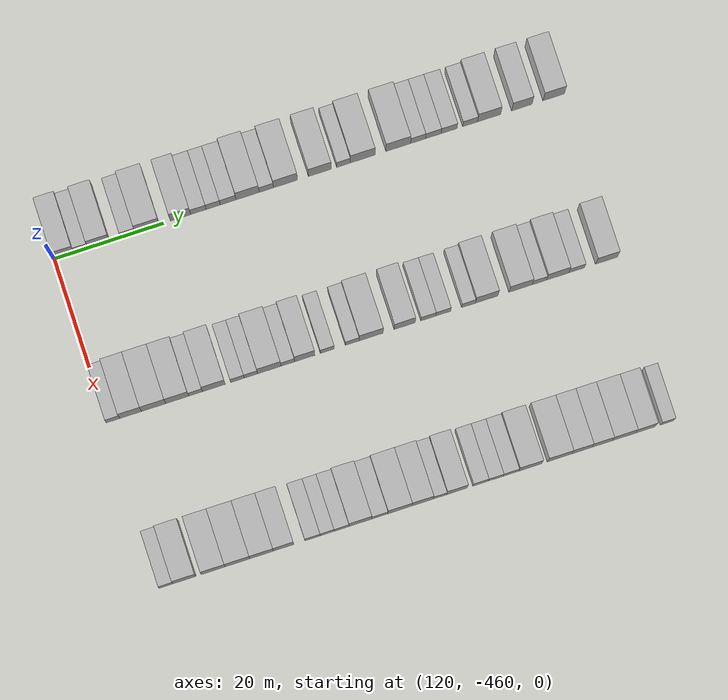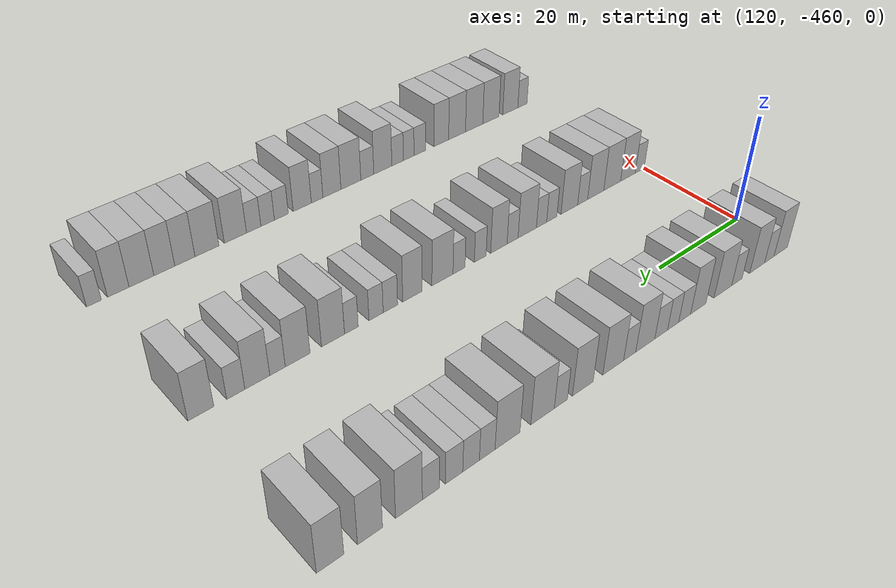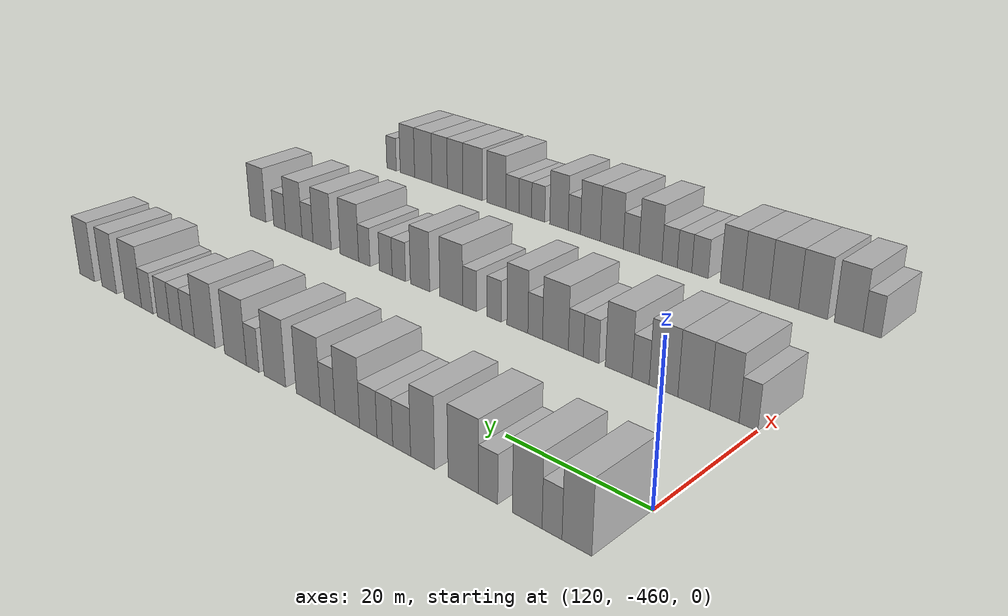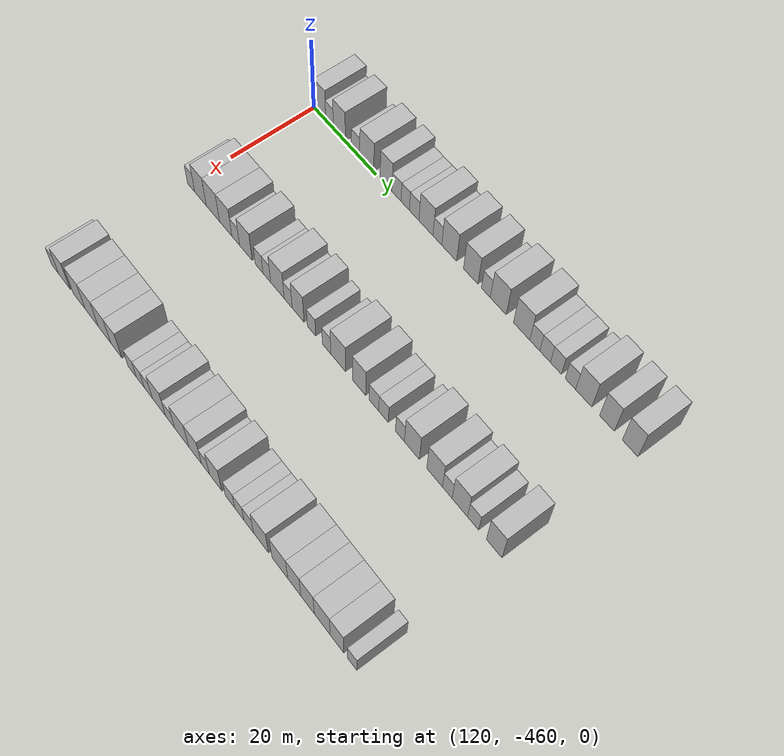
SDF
<sdf version="1.6">
 <world name="default">
  <model name="building_702">
   <static>1</static>
   <pose>115.0000 -458.1522 0 0.000000 0.000000 0.000000</pose>
   <link name="link">
    <pose>0 0 4.50 0 0 0</pose>
    <collision name="collision"><geometry><box><size>10.0000 3.6956 9.0000</size></box></geometry></collision>
    <visual name="visual">
     <cast_shadows>0</cast_shadows>
     <geometry><box><size>10.0000 3.6956 9.0000</size></box></geometry>
     <material>
      <script>
       <uri>model://HANNAS_wall/materials/scripts</uri>
       <uri>model://HANNAS_wall/materials/textures</uri>
       <name>vrc/HANNAS_wall</name>
      </script>
     </material>
    </visual>
   </link>
  </model>
  <model name="building_703">
   <static>1</static>
   <pose>115.0000 -455.0283 0 0.000000 0.000000 0.000000</pose>
   <link name="link">
    <pose>0 0 3.00 0 0 0</pose>
    <collision name="collision"><geometry><box><size>10.0000 2.5522 6.0000</size></box></geometry></collision>
    <visual name="visual">
     <cast_shadows>0</cast_shadows>
     <geometry><box><size>10.0000 2.5522 6.0000</size></box></geometry>
     <material>
      <script>
       <uri>model://HANNAS_wall/materials/scripts</uri>
       <uri>model://HANNAS_wall/materials/textures</uri>
       <name>vrc/HANNAS_wall</name>
      </script>
     </material>
    </visual>
   </link>
  </model>
  <model name="building_704">
   <static>1</static>
   <pose>115.0000 -451.7922 0 0.000000 0.000000 0.000000</pose>
   <link name="link">
    <pose>0 0 4.50 0 0 0</pose>
    <collision name="collision"><geometry><box><size>10.0000 3.9200 9.0000</size></box></geometry></collision>
    <visual name="visual">
     <cast_shadows>0</cast_shadows>
     <geometry><box><size>10.0000 3.9200 9.0000</size></box></geometry>
     <material>
      <script>
       <uri>model://HANNAS_wall/materials/scripts</uri>
       <uri>model://HANNAS_wall/materials/textures</uri>
       <name>vrc/HANNAS_wall</name>
      </script>
     </material>
    </visual>
   </link>
  </model>
  <model name="building_705">
   <static>1</static>
   <pose>115.0000 -446.5044 0 0.000000 0.000000 0.000000</pose>
   <link name="link">
    <pose>0 0 3.00 0 0 0</pose>
    <collision name="collision"><geometry><box><size>10.0000 2.6556 6.0000</size></box></geometry></collision>
    <visual name="visual">
     <cast_shadows>0</cast_shadows>
     <geometry><box><size>10.0000 2.6556 6.0000</size></box></geometry>
     <material>
      <script>
       <uri>model://HANNAS_wall/materials/scripts</uri>
       <uri>model://HANNAS_wall/materials/textures</uri>
       <name>vrc/HANNAS_wall</name>
      </script>
     </material>
    </visual>
   </link>
  </model>
  <model name="building_706">
   <static>1</static>
   <pose>115.0000 -442.9688 0 0.000000 0.000000 0.000000</pose>
   <link name="link">
    <pose>0 0 4.50 0 0 0</pose>
    <collision name="collision"><geometry><box><size>10.0000 4.4158 9.0000</size></box></geometry></collision>
    <visual name="visual">
     <cast_shadows>0</cast_shadows>
     <geometry><box><size>10.0000 4.4158 9.0000</size></box></geometry>
     <material>
      <script>
       <uri>model://HANNAS_wall/materials/scripts</uri>
       <uri>model://HANNAS_wall/materials/textures</uri>
       <name>vrc/HANNAS_wall</name>
      </script>
     </material>
    </visual>
   </link>
  </model>
  <model name="building_707">
   <static>1</static>
   <pose>115.0000 -436.9194 0 0.000000 0.000000 0.000000</pose>
   <link name="link">
    <pose>0 0 4.50 0 0 0</pose>
    <collision name="collision"><geometry><box><size>10.0000 3.6829 9.0000</size></box></geometry></collision>
    <visual name="visual">
     <cast_shadows>0</cast_shadows>
     <geometry><box><size>10.0000 3.6829 9.0000</size></box></geometry>
     <material>
      <script>
       <uri>model://HANNAS_wall/materials/scripts</uri>
       <uri>model://HANNAS_wall/materials/textures</uri>
       <name>vrc/HANNAS_wall</name>
      </script>
     </material>
    </visual>
   </link>
  </model>
  <model name="building_708">
   <static>1</static>
   <pose>115.0000 -433.6701 0 0.000000 0.000000 0.000000</pose>
   <link name="link">
    <pose>0 0 3.00 0 0 0</pose>
    <collision name="collision"><geometry><box><size>10.0000 2.8158 6.0000</size></box></geometry></collision>
    <visual name="visual">
     <cast_shadows>0</cast_shadows>
     <geometry><box><size>10.0000 2.8158 6.0000</size></box></geometry>
     <material>
      <script>
       <uri>model://HANNAS_wall/materials/scripts</uri>
       <uri>model://HANNAS_wall/materials/textures</uri>
       <name>vrc/HANNAS_wall</name>
      </script>
     </material>
    </visual>
   </link>
  </model>
  <model name="building_709">
   <static>1</static>
   <pose>115.0000 -430.9777 0 0.000000 0.000000 0.000000</pose>
   <link name="link">
    <pose>0 0 3.00 0 0 0</pose>
    <collision name="collision"><geometry><box><size>10.0000 2.5691 6.0000</size></box></geometry></collision>
    <visual name="visual">
     <cast_shadows>0</cast_shadows>
     <geometry><box><size>10.0000 2.5691 6.0000</size></box></geometry>
     <material>
      <script>
       <uri>model://HANNAS_wall/materials/scripts</uri>
       <uri>model://HANNAS_wall/materials/textures</uri>
       <name>vrc/HANNAS_wall</name>
      </script>
     </material>
    </visual>
   </link>
  </model>
  <model name="building_710">
   <static>1</static>
   <pose>115.0000 -428.2494 0 0.000000 0.000000 0.000000</pose>
   <link name="link">
    <pose>0 0 3.00 0 0 0</pose>
    <collision name="collision"><geometry><box><size>10.0000 2.8874 6.0000</size></box></geometry></collision>
    <visual name="visual">
     <cast_shadows>0</cast_shadows>
     <geometry><box><size>10.0000 2.8874 6.0000</size></box></geometry>
     <material>
      <script>
       <uri>model://HANNAS_wall/materials/scripts</uri>
       <uri>model://HANNAS_wall/materials/textures</uri>
       <name>vrc/HANNAS_wall</name>
      </script>
     </material>
    </visual>
   </link>
  </model>
  <model name="building_711">
   <static>1</static>
   <pose>115.0000 -424.6953 0 0.000000 0.000000 0.000000</pose>
   <link name="link">
    <pose>0 0 4.50 0 0 0</pose>
    <collision name="collision"><geometry><box><size>10.0000 4.2209 9.0000</size></box></geometry></collision>
    <visual name="visual">
     <cast_shadows>0</cast_shadows>
     <geometry><box><size>10.0000 4.2209 9.0000</size></box></geometry>
     <material>
      <script>
       <uri>model://HANNAS_wall/materials/scripts</uri>
       <uri>model://HANNAS_wall/materials/textures</uri>
       <name>vrc/HANNAS_wall</name>
      </script>
     </material>
    </visual>
   </link>
  </model>
  <model name="building_712">
   <static>1</static>
   <pose>115.0000 -421.2819 0 0.000000 0.000000 0.000000</pose>
   <link name="link">
    <pose>0 0 3.00 0 0 0</pose>
    <collision name="collision"><geometry><box><size>10.0000 2.6059 6.0000</size></box></geometry></collision>
    <visual name="visual">
     <cast_shadows>0</cast_shadows>
     <geometry><box><size>10.0000 2.6059 6.0000</size></box></geometry>
     <material>
      <script>
       <uri>model://HANNAS_wall/materials/scripts</uri>
       <uri>model://HANNAS_wall/materials/textures</uri>
       <name>vrc/HANNAS_wall</name>
      </script>
     </material>
    </visual>
   </link>
  </model>
  <model name="building_713">
   <static>1</static>
   <pose>115.0000 -417.7911 0 0.000000 0.000000 0.000000</pose>
   <link name="link">
    <pose>0 0 4.50 0 0 0</pose>
    <collision name="collision"><geometry><box><size>10.0000 4.3756 9.0000</size></box></geometry></collision>
    <visual name="visual">
     <cast_shadows>0</cast_shadows>
     <geometry><box><size>10.0000 4.3756 9.0000</size></box></geometry>
     <material>
      <script>
       <uri>model://HANNAS_wall/materials/scripts</uri>
       <uri>model://HANNAS_wall/materials/textures</uri>
       <name>vrc/HANNAS_wall</name>
      </script>
     </material>
    </visual>
   </link>
  </model>
  <model name="building_714">
   <static>1</static>
   <pose>115.0000 -411.5226 0 0.000000 0.000000 0.000000</pose>
   <link name="link">
    <pose>0 0 4.50 0 0 0</pose>
    <collision name="collision"><geometry><box><size>10.0000 4.1614 9.0000</size></box></geometry></collision>
    <visual name="visual">
     <cast_shadows>0</cast_shadows>
     <geometry><box><size>10.0000 4.1614 9.0000</size></box></geometry>
     <material>
      <script>
       <uri>model://HANNAS_wall/materials/scripts</uri>
       <uri>model://HANNAS_wall/materials/textures</uri>
       <name>vrc/HANNAS_wall</name>
      </script>
     </material>
    </visual>
   </link>
  </model>
  <model name="building_715">
   <static>1</static>
   <pose>115.0000 -407.1749 0 0.000000 0.000000 0.000000</pose>
   <link name="link">
    <pose>0 0 3.00 0 0 0</pose>
    <collision name="collision"><geometry><box><size>10.0000 2.5339 6.0000</size></box></geometry></collision>
    <visual name="visual">
     <cast_shadows>0</cast_shadows>
     <geometry><box><size>10.0000 2.5339 6.0000</size></box></geometry>
     <material>
      <script>
       <uri>model://HANNAS_wall/materials/scripts</uri>
       <uri>model://HANNAS_wall/materials/textures</uri>
       <name>vrc/HANNAS_wall</name>
      </script>
     </material>
    </visual>
   </link>
  </model>
  <model name="building_716">
   <static>1</static>
   <pose>115.0000 -403.6749 0 0.000000 0.000000 0.000000</pose>
   <link name="link">
    <pose>0 0 4.50 0 0 0</pose>
    <collision name="collision"><geometry><box><size>10.0000 4.4660 9.0000</size></box></geometry></collision>
    <visual name="visual">
     <cast_shadows>0</cast_shadows>
     <geometry><box><size>10.0000 4.4660 9.0000</size></box></geometry>
     <material>
      <script>
       <uri>model://HANNAS_wall/materials/scripts</uri>
       <uri>model://HANNAS_wall/materials/textures</uri>
       <name>vrc/HANNAS_wall</name>
      </script>
     </material>
    </visual>
   </link>
  </model>
  <model name="building_717">
   <static>1</static>
   <pose>115.0000 -397.1925 0 0.000000 0.000000 0.000000</pose>
   <link name="link">
    <pose>0 0 4.50 0 0 0</pose>
    <collision name="collision"><geometry><box><size>10.0000 4.4988 9.0000</size></box></geometry></collision>
    <visual name="visual">
     <cast_shadows>0</cast_shadows>
     <geometry><box><size>10.0000 4.4988 9.0000</size></box></geometry>
     <material>
      <script>
       <uri>model://HANNAS_wall/materials/scripts</uri>
       <uri>model://HANNAS_wall/materials/textures</uri>
       <name>vrc/HANNAS_wall</name>
      </script>
     </material>
    </visual>
   </link>
  </model>
  <model name="building_718">
   <static>1</static>
   <pose>115.0000 -393.5717 0 0.000000 0.000000 0.000000</pose>
   <link name="link">
    <pose>0 0 3.00 0 0 0</pose>
    <collision name="collision"><geometry><box><size>10.0000 2.7427 6.0000</size></box></geometry></collision>
    <visual name="visual">
     <cast_shadows>0</cast_shadows>
     <geometry><box><size>10.0000 2.7427 6.0000</size></box></geometry>
     <material>
      <script>
       <uri>model://HANNAS_wall/materials/scripts</uri>
       <uri>model://HANNAS_wall/materials/textures</uri>
       <name>vrc/HANNAS_wall</name>
      </script>
     </material>
    </visual>
   </link>
  </model>
  <model name="building_719">
   <static>1</static>
   <pose>115.0000 -390.7746 0 0.000000 0.000000 0.000000</pose>
   <link name="link">
    <pose>0 0 3.00 0 0 0</pose>
    <collision name="collision"><geometry><box><size>10.0000 2.8515 6.0000</size></box></geometry></collision>
    <visual name="visual">
     <cast_shadows>0</cast_shadows>
     <geometry><box><size>10.0000 2.8515 6.0000</size></box></geometry>
     <material>
      <script>
       <uri>model://HANNAS_wall/materials/scripts</uri>
       <uri>model://HANNAS_wall/materials/textures</uri>
       <name>vrc/HANNAS_wall</name>
      </script>
     </material>
    </visual>
   </link>
  </model>
  <model name="building_720">
   <static>1</static>
   <pose>115.0000 -387.8853 0 0.000000 0.000000 0.000000</pose>
   <link name="link">
    <pose>0 0 3.00 0 0 0</pose>
    <collision name="collision"><geometry><box><size>10.0000 2.9270 6.0000</size></box></geometry></collision>
    <visual name="visual">
     <cast_shadows>0</cast_shadows>
     <geometry><box><size>10.0000 2.9270 6.0000</size></box></geometry>
     <material>
      <script>
       <uri>model://HANNAS_wall/materials/scripts</uri>
       <uri>model://HANNAS_wall/materials/textures</uri>
       <name>vrc/HANNAS_wall</name>
      </script>
     </material>
    </visual>
   </link>
  </model>
  <model name="building_721">
   <static>1</static>
   <pose>115.0000 -384.0504 0 0.000000 0.000000 0.000000</pose>
   <link name="link">
    <pose>0 0 3.00 0 0 0</pose>
    <collision name="collision"><geometry><box><size>10.0000 2.7428 6.0000</size></box></geometry></collision>
    <visual name="visual">
     <cast_shadows>0</cast_shadows>
     <geometry><box><size>10.0000 2.7428 6.0000</size></box></geometry>
     <material>
      <script>
       <uri>model://HANNAS_wall/materials/scripts</uri>
       <uri>model://HANNAS_wall/materials/textures</uri>
       <name>vrc/HANNAS_wall</name>
      </script>
     </material>
    </visual>
   </link>
  </model>
  <model name="building_722">
   <static>1</static>
   <pose>115.0000 -380.5651 0 0.000000 0.000000 0.000000</pose>
   <link name="link">
    <pose>0 0 4.50 0 0 0</pose>
    <collision name="collision"><geometry><box><size>10.0000 4.2280 9.0000</size></box></geometry></collision>
    <visual name="visual">
     <cast_shadows>0</cast_shadows>
     <geometry><box><size>10.0000 4.2280 9.0000</size></box></geometry>
     <material>
      <script>
       <uri>model://HANNAS_wall/materials/scripts</uri>
       <uri>model://HANNAS_wall/materials/textures</uri>
       <name>vrc/HANNAS_wall</name>
      </script>
     </material>
    </visual>
   </link>
  </model>
  <model name="building_723">
   <static>1</static>
   <pose>115.0000 -374.5750 0 0.000000 0.000000 0.000000</pose>
   <link name="link">
    <pose>0 0 4.50 0 0 0</pose>
    <collision name="collision"><geometry><box><size>10.0000 3.7521 9.0000</size></box></geometry></collision>
    <visual name="visual">
     <cast_shadows>0</cast_shadows>
     <geometry><box><size>10.0000 3.7521 9.0000</size></box></geometry>
     <material>
      <script>
       <uri>model://HANNAS_wall/materials/scripts</uri>
       <uri>model://HANNAS_wall/materials/textures</uri>
       <name>vrc/HANNAS_wall</name>
      </script>
     </material>
    </visual>
   </link>
  </model>
  <model name="building_724">
   <static>1</static>
   <pose>115.0000 -368.7355 0 0.000000 0.000000 0.000000</pose>
   <link name="link">
    <pose>0 0 4.50 0 0 0</pose>
    <collision name="collision"><geometry><box><size>10.0000 3.9268 9.0000</size></box></geometry></collision>
    <visual name="visual">
     <cast_shadows>0</cast_shadows>
     <geometry><box><size>10.0000 3.9268 9.0000</size></box></geometry>
     <material>
      <script>
       <uri>model://HANNAS_wall/materials/scripts</uri>
       <uri>model://HANNAS_wall/materials/textures</uri>
       <name>vrc/HANNAS_wall</name>
      </script>
     </material>
    </visual>
   </link>
  </model>
  <model name="building_932">
   <static>1</static>
   <pose>145.0000 -458.7720 0 0.000000 0.000000 0.000000</pose>
   <link name="link">
    <pose>0 0 3.00 0 0 0</pose>
    <collision name="collision"><geometry><box><size>10.0000 2.4559 6.0000</size></box></geometry></collision>
    <visual name="visual">
     <cast_shadows>0</cast_shadows>
     <geometry><box><size>10.0000 2.4559 6.0000</size></box></geometry>
     <material>
      <script>
       <uri>model://HANNAS_wall/materials/scripts</uri>
       <uri>model://HANNAS_wall/materials/textures</uri>
       <name>vrc/HANNAS_wall</name>
      </script>
     </material>
    </visual>
   </link>
  </model>
  <model name="building_933">
   <static>1</static>
   <pose>145.0000 -455.5811 0 0.000000 0.000000 0.000000</pose>
   <link name="link">
    <pose>0 0 4.50 0 0 0</pose>
    <collision name="collision"><geometry><box><size>10.0000 3.9260 9.0000</size></box></geometry></collision>
    <visual name="visual">
     <cast_shadows>0</cast_shadows>
     <geometry><box><size>10.0000 3.9260 9.0000</size></box></geometry>
     <material>
      <script>
       <uri>model://HANNAS_wall/materials/scripts</uri>
       <uri>model://HANNAS_wall/materials/textures</uri>
       <name>vrc/HANNAS_wall</name>
      </script>
     </material>
    </visual>
   </link>
  </model>
  <model name="building_934">
   <static>1</static>
   <pose>145.0000 -451.4087 0 0.000000 0.000000 0.000000</pose>
   <link name="link">
    <pose>0 0 4.50 0 0 0</pose>
    <collision name="collision"><geometry><box><size>10.0000 4.4187 9.0000</size></box></geometry></collision>
    <visual name="visual">
     <cast_shadows>0</cast_shadows>
     <geometry><box><size>10.0000 4.4187 9.0000</size></box></geometry>
     <material>
      <script>
       <uri>model://HANNAS_wall/materials/scripts</uri>
       <uri>model://HANNAS_wall/materials/textures</uri>
       <name>vrc/HANNAS_wall</name>
      </script>
     </material>
    </visual>
   </link>
  </model>
  <model name="building_935">
   <static>1</static>
   <pose>145.0000 -447.1351 0 0.000000 0.000000 0.000000</pose>
   <link name="link">
    <pose>0 0 4.50 0 0 0</pose>
    <collision name="collision"><geometry><box><size>10.0000 4.1285 9.0000</size></box></geometry></collision>
    <visual name="visual">
     <cast_shadows>0</cast_shadows>
     <geometry><box><size>10.0000 4.1285 9.0000</size></box></geometry>
     <material>
      <script>
       <uri>model://HANNAS_wall/materials/scripts</uri>
       <uri>model://HANNAS_wall/materials/textures</uri>
       <name>vrc/HANNAS_wall</name>
      </script>
     </material>
    </visual>
   </link>
  </model>
  <model name="building_936">
   <static>1</static>
   <pose>145.0000 -443.8119 0 0.000000 0.000000 0.000000</pose>
   <link name="link">
    <pose>0 0 3.00 0 0 0</pose>
    <collision name="collision"><geometry><box><size>10.0000 2.5180 6.0000</size></box></geometry></collision>
    <visual name="visual">
     <cast_shadows>0</cast_shadows>
     <geometry><box><size>10.0000 2.5180 6.0000</size></box></geometry>
     <material>
      <script>
       <uri>model://HANNAS_wall/materials/scripts</uri>
       <uri>model://HANNAS_wall/materials/textures</uri>
       <name>vrc/HANNAS_wall</name>
      </script>
     </material>
    </visual>
   </link>
  </model>
  <model name="building_937">
   <static>1</static>
   <pose>145.0000 -440.5059 0 0.000000 0.000000 0.000000</pose>
   <link name="link">
    <pose>0 0 4.50 0 0 0</pose>
    <collision name="collision"><geometry><box><size>10.0000 4.0940 9.0000</size></box></geometry></collision>
    <visual name="visual">
     <cast_shadows>0</cast_shadows>
     <geometry><box><size>10.0000 4.0940 9.0000</size></box></geometry>
     <material>
      <script>
       <uri>model://HANNAS_wall/materials/scripts</uri>
       <uri>model://HANNAS_wall/materials/textures</uri>
       <name>vrc/HANNAS_wall</name>
      </script>
     </material>
    </visual>
   </link>
  </model>
  <model name="building_938">
   <static>1</static>
   <pose>145.0000 -436.2290 0 0.000000 0.000000 0.000000</pose>
   <link name="link">
    <pose>0 0 3.00 0 0 0</pose>
    <collision name="collision"><geometry><box><size>10.0000 2.4597 6.0000</size></box></geometry></collision>
    <visual name="visual">
     <cast_shadows>0</cast_shadows>
     <geometry><box><size>10.0000 2.4597 6.0000</size></box></geometry>
     <material>
      <script>
       <uri>model://HANNAS_wall/materials/scripts</uri>
       <uri>model://HANNAS_wall/materials/textures</uri>
       <name>vrc/HANNAS_wall</name>
      </script>
     </material>
    </visual>
   </link>
  </model>
  <model name="building_939">
   <static>1</static>
   <pose>145.0000 -433.7889 0 0.000000 0.000000 0.000000</pose>
   <link name="link">
    <pose>0 0 3.00 0 0 0</pose>
    <collision name="collision"><geometry><box><size>10.0000 2.4206 6.0000</size></box></geometry></collision>
    <visual name="visual">
     <cast_shadows>0</cast_shadows>
     <geometry><box><size>10.0000 2.4206 6.0000</size></box></geometry>
     <material>
      <script>
       <uri>model://HANNAS_wall/materials/scripts</uri>
       <uri>model://HANNAS_wall/materials/textures</uri>
       <name>vrc/HANNAS_wall</name>
      </script>
     </material>
    </visual>
   </link>
  </model>
  <model name="building_940">
   <static>1</static>
   <pose>145.0000 -430.4483 0 0.000000 0.000000 0.000000</pose>
   <link name="link">
    <pose>0 0 4.50 0 0 0</pose>
    <collision name="collision"><geometry><box><size>10.0000 4.2606 9.0000</size></box></geometry></collision>
    <visual name="visual">
     <cast_shadows>0</cast_shadows>
     <geometry><box><size>10.0000 4.2606 9.0000</size></box></geometry>
     <material>
      <script>
       <uri>model://HANNAS_wall/materials/scripts</uri>
       <uri>model://HANNAS_wall/materials/textures</uri>
       <name>vrc/HANNAS_wall</name>
      </script>
     </material>
    </visual>
   </link>
  </model>
  <model name="building_941">
   <static>1</static>
   <pose>145.0000 -427.0723 0 0.000000 0.000000 0.000000</pose>
   <link name="link">
    <pose>0 0 3.00 0 0 0</pose>
    <collision name="collision"><geometry><box><size>10.0000 2.4914 6.0000</size></box></geometry></collision>
    <visual name="visual">
     <cast_shadows>0</cast_shadows>
     <geometry><box><size>10.0000 2.4914 6.0000</size></box></geometry>
     <material>
      <script>
       <uri>model://HANNAS_wall/materials/scripts</uri>
       <uri>model://HANNAS_wall/materials/textures</uri>
       <name>vrc/HANNAS_wall</name>
      </script>
     </material>
    </visual>
   </link>
  </model>
  <model name="building_942">
   <static>1</static>
   <pose>145.0000 -423.9969 0 0.000000 0.000000 0.000000</pose>
   <link name="link">
    <pose>0 0 4.50 0 0 0</pose>
    <collision name="collision"><geometry><box><size>10.0000 3.6592 9.0000</size></box></geometry></collision>
    <visual name="visual">
     <cast_shadows>0</cast_shadows>
     <geometry><box><size>10.0000 3.6592 9.0000</size></box></geometry>
     <material>
      <script>
       <uri>model://HANNAS_wall/materials/scripts</uri>
       <uri>model://HANNAS_wall/materials/textures</uri>
       <name>vrc/HANNAS_wall</name>
      </script>
     </material>
    </visual>
   </link>
  </model>
  <model name="building_943">
   <static>1</static>
   <pose>145.0000 -419.8960 0 0.000000 0.000000 0.000000</pose>
   <link name="link">
    <pose>0 0 3.00 0 0 0</pose>
    <collision name="collision"><geometry><box><size>10.0000 2.5427 6.0000</size></box></geometry></collision>
    <visual name="visual">
     <cast_shadows>0</cast_shadows>
     <geometry><box><size>10.0000 2.5427 6.0000</size></box></geometry>
     <material>
      <script>
       <uri>model://HANNAS_wall/materials/scripts</uri>
       <uri>model://HANNAS_wall/materials/textures</uri>
       <name>vrc/HANNAS_wall</name>
      </script>
     </material>
    </visual>
   </link>
  </model>
  <model name="building_944">
   <static>1</static>
   <pose>145.0000 -415.3587 0 0.000000 0.000000 0.000000</pose>
   <link name="link">
    <pose>0 0 3.00 0 0 0</pose>
    <collision name="collision"><geometry><box><size>10.0000 2.5319 6.0000</size></box></geometry></collision>
    <visual name="visual">
     <cast_shadows>0</cast_shadows>
     <geometry><box><size>10.0000 2.5319 6.0000</size></box></geometry>
     <material>
      <script>
       <uri>model://HANNAS_wall/materials/scripts</uri>
       <uri>model://HANNAS_wall/materials/textures</uri>
       <name>vrc/HANNAS_wall</name>
      </script>
     </material>
    </visual>
   </link>
  </model>
  <model name="building_945">
   <static>1</static>
   <pose>145.0000 -411.9163 0 0.000000 0.000000 0.000000</pose>
   <link name="link">
    <pose>0 0 4.50 0 0 0</pose>
    <collision name="collision"><geometry><box><size>10.0000 4.3529 9.0000</size></box></geometry></collision>
    <visual name="visual">
     <cast_shadows>0</cast_shadows>
     <geometry><box><size>10.0000 4.3529 9.0000</size></box></geometry>
     <material>
      <script>
       <uri>model://HANNAS_wall/materials/scripts</uri>
       <uri>model://HANNAS_wall/materials/textures</uri>
       <name>vrc/HANNAS_wall</name>
      </script>
     </material>
    </visual>
   </link>
  </model>
  <model name="building_946">
   <static>1</static>
   <pose>145.0000 -405.8227 0 0.000000 0.000000 0.000000</pose>
   <link name="link">
    <pose>0 0 4.50 0 0 0</pose>
    <collision name="collision"><geometry><box><size>10.0000 3.8343 9.0000</size></box></geometry></collision>
    <visual name="visual">
     <cast_shadows>0</cast_shadows>
     <geometry><box><size>10.0000 3.8343 9.0000</size></box></geometry>
     <material>
      <script>
       <uri>model://HANNAS_wall/materials/scripts</uri>
       <uri>model://HANNAS_wall/materials/textures</uri>
       <name>vrc/HANNAS_wall</name>
      </script>
     </material>
    </visual>
   </link>
  </model>
  <model name="building_947">
   <static>1</static>
   <pose>145.0000 -401.5251 0 0.000000 0.000000 0.000000</pose>
   <link name="link">
    <pose>0 0 3.00 0 0 0</pose>
    <collision name="collision"><geometry><box><size>10.0000 2.7609 6.0000</size></box></geometry></collision>
    <visual name="visual">
     <cast_shadows>0</cast_shadows>
     <geometry><box><size>10.0000 2.7609 6.0000</size></box></geometry>
     <material>
      <script>
       <uri>model://HANNAS_wall/materials/scripts</uri>
       <uri>model://HANNAS_wall/materials/textures</uri>
       <name>vrc/HANNAS_wall</name>
      </script>
     </material>
    </visual>
   </link>
  </model>
  <model name="building_948">
   <static>1</static>
   <pose>145.0000 -398.8004 0 0.000000 0.000000 0.000000</pose>
   <link name="link">
    <pose>0 0 3.00 0 0 0</pose>
    <collision name="collision"><geometry><box><size>10.0000 2.6885 6.0000</size></box></geometry></collision>
    <visual name="visual">
     <cast_shadows>0</cast_shadows>
     <geometry><box><size>10.0000 2.6885 6.0000</size></box></geometry>
     <material>
      <script>
       <uri>model://HANNAS_wall/materials/scripts</uri>
       <uri>model://HANNAS_wall/materials/textures</uri>
       <name>vrc/HANNAS_wall</name>
      </script>
     </material>
    </visual>
   </link>
  </model>
  <model name="building_949">
   <static>1</static>
   <pose>145.0000 -394.2069 0 0.000000 0.000000 0.000000</pose>
   <link name="link">
    <pose>0 0 3.00 0 0 0</pose>
    <collision name="collision"><geometry><box><size>10.0000 2.4986 6.0000</size></box></geometry></collision>
    <visual name="visual">
     <cast_shadows>0</cast_shadows>
     <geometry><box><size>10.0000 2.4986 6.0000</size></box></geometry>
     <material>
      <script>
       <uri>model://HANNAS_wall/materials/scripts</uri>
       <uri>model://HANNAS_wall/materials/textures</uri>
       <name>vrc/HANNAS_wall</name>
      </script>
     </material>
    </visual>
   </link>
  </model>
  <model name="building_950">
   <static>1</static>
   <pose>145.0000 -390.8938 0 0.000000 0.000000 0.000000</pose>
   <link name="link">
    <pose>0 0 4.50 0 0 0</pose>
    <collision name="collision"><geometry><box><size>10.0000 4.1275 9.0000</size></box></geometry></collision>
    <visual name="visual">
     <cast_shadows>0</cast_shadows>
     <geometry><box><size>10.0000 4.1275 9.0000</size></box></geometry>
     <material>
      <script>
       <uri>model://HANNAS_wall/materials/scripts</uri>
       <uri>model://HANNAS_wall/materials/textures</uri>
       <name>vrc/HANNAS_wall</name>
      </script>
     </material>
    </visual>
   </link>
  </model>
  <model name="building_951">
   <static>1</static>
   <pose>145.0000 -384.7081 0 0.000000 0.000000 0.000000</pose>
   <link name="link">
    <pose>0 0 4.50 0 0 0</pose>
    <collision name="collision"><geometry><box><size>10.0000 4.2439 9.0000</size></box></geometry></collision>
    <visual name="visual">
     <cast_shadows>0</cast_shadows>
     <geometry><box><size>10.0000 4.2439 9.0000</size></box></geometry>
     <material>
      <script>
       <uri>model://HANNAS_wall/materials/scripts</uri>
       <uri>model://HANNAS_wall/materials/textures</uri>
       <name>vrc/HANNAS_wall</name>
      </script>
     </material>
    </visual>
   </link>
  </model>
  <model name="building_952">
   <static>1</static>
   <pose>145.0000 -381.2865 0 0.000000 0.000000 0.000000</pose>
   <link name="link">
    <pose>0 0 3.00 0 0 0</pose>
    <collision name="collision"><geometry><box><size>10.0000 2.5993 6.0000</size></box></geometry></collision>
    <visual name="visual">
     <cast_shadows>0</cast_shadows>
     <geometry><box><size>10.0000 2.5993 6.0000</size></box></geometry>
     <material>
      <script>
       <uri>model://HANNAS_wall/materials/scripts</uri>
       <uri>model://HANNAS_wall/materials/textures</uri>
       <name>vrc/HANNAS_wall</name>
      </script>
     </material>
    </visual>
   </link>
  </model>
  <model name="building_953">
   <static>1</static>
   <pose>145.0000 -377.9598 0 0.000000 0.000000 0.000000</pose>
   <link name="link">
    <pose>0 0 4.50 0 0 0</pose>
    <collision name="collision"><geometry><box><size>10.0000 4.0541 9.0000</size></box></geometry></collision>
    <visual name="visual">
     <cast_shadows>0</cast_shadows>
     <geometry><box><size>10.0000 4.0541 9.0000</size></box></geometry>
     <material>
      <script>
       <uri>model://HANNAS_wall/materials/scripts</uri>
       <uri>model://HANNAS_wall/materials/textures</uri>
       <name>vrc/HANNAS_wall</name>
      </script>
     </material>
    </visual>
   </link>
  </model>
  <model name="building_954">
   <static>1</static>
   <pose>145.0000 -374.4850 0 0.000000 0.000000 0.000000</pose>
   <link name="link">
    <pose>0 0 3.00 0 0 0</pose>
    <collision name="collision"><geometry><box><size>10.0000 2.8956 6.0000</size></box></geometry></collision>
    <visual name="visual">
     <cast_shadows>0</cast_shadows>
     <geometry><box><size>10.0000 2.8956 6.0000</size></box></geometry>
     <material>
      <script>
       <uri>model://HANNAS_wall/materials/scripts</uri>
       <uri>model://HANNAS_wall/materials/textures</uri>
       <name>vrc/HANNAS_wall</name>
      </script>
     </material>
    </visual>
   </link>
  </model>
  <model name="building_955">
   <static>1</static>
   <pose>145.0000 -369.0428 0 0.000000 0.000000 0.000000</pose>
   <link name="link">
    <pose>0 0 4.50 0 0 0</pose>
    <collision name="collision"><geometry><box><size>10.0000 3.9886 9.0000</size></box></geometry></collision>
    <visual name="visual">
     <cast_shadows>0</cast_shadows>
     <geometry><box><size>10.0000 3.9886 9.0000</size></box></geometry>
     <material>
      <script>
       <uri>model://HANNAS_wall/materials/scripts</uri>
       <uri>model://HANNAS_wall/materials/textures</uri>
       <name>vrc/HANNAS_wall</name>
      </script>
     </material>
    </visual>
   </link>
  </model>
  <model name="building_1159">
   <static>1</static>
   <pose>175.0000 -458.7418 0 0.000000 0.000000 0.000000</pose>
   <link name="link">
    <pose>0 0 3.00 0 0 0</pose>
    <collision name="collision"><geometry><box><size>10.0000 2.5164 6.0000</size></box></geometry></collision>
    <visual name="visual">
     <cast_shadows>0</cast_shadows>
     <geometry><box><size>10.0000 2.5164 6.0000</size></box></geometry>
     <material>
      <script>
       <uri>model://HANNAS_wall/materials/scripts</uri>
       <uri>model://HANNAS_wall/materials/textures</uri>
       <name>vrc/HANNAS_wall</name>
      </script>
     </material>
    </visual>
   </link>
  </model>
  <model name="building_1160">
   <static>1</static>
   <pose>175.0000 -455.4317 0 0.000000 0.000000 0.000000</pose>
   <link name="link">
    <pose>0 0 4.50 0 0 0</pose>
    <collision name="collision"><geometry><box><size>10.0000 4.1039 9.0000</size></box></geometry></collision>
    <visual name="visual">
     <cast_shadows>0</cast_shadows>
     <geometry><box><size>10.0000 4.1039 9.0000</size></box></geometry>
     <material>
      <script>
       <uri>model://HANNAS_wall/materials/scripts</uri>
       <uri>model://HANNAS_wall/materials/textures</uri>
       <name>vrc/HANNAS_wall</name>
      </script>
     </material>
    </visual>
   </link>
  </model>
  <model name="building_1161">
   <static>1</static>
   <pose>175.0000 -450.2366 0 0.000000 0.000000 0.000000</pose>
   <link name="link">
    <pose>0 0 4.50 0 0 0</pose>
    <collision name="collision"><geometry><box><size>10.0000 4.2863 9.0000</size></box></geometry></collision>
    <visual name="visual">
     <cast_shadows>0</cast_shadows>
     <geometry><box><size>10.0000 4.2863 9.0000</size></box></geometry>
     <material>
      <script>
       <uri>model://HANNAS_wall/materials/scripts</uri>
       <uri>model://HANNAS_wall/materials/textures</uri>
       <name>vrc/HANNAS_wall</name>
      </script>
     </material>
    </visual>
   </link>
  </model>
  <model name="building_1162">
   <static>1</static>
   <pose>175.0000 -445.8581 0 0.000000 0.000000 0.000000</pose>
   <link name="link">
    <pose>0 0 4.50 0 0 0</pose>
    <collision name="collision"><geometry><box><size>10.0000 4.4708 9.0000</size></box></geometry></collision>
    <visual name="visual">
     <cast_shadows>0</cast_shadows>
     <geometry><box><size>10.0000 4.4708 9.0000</size></box></geometry>
     <material>
      <script>
       <uri>model://HANNAS_wall/materials/scripts</uri>
       <uri>model://HANNAS_wall/materials/textures</uri>
       <name>vrc/HANNAS_wall</name>
      </script>
     </material>
    </visual>
   </link>
  </model>
  <model name="building_1163">
   <static>1</static>
   <pose>175.0000 -441.5015 0 0.000000 0.000000 0.000000</pose>
   <link name="link">
    <pose>0 0 4.50 0 0 0</pose>
    <collision name="collision"><geometry><box><size>10.0000 4.2423 9.0000</size></box></geometry></collision>
    <visual name="visual">
     <cast_shadows>0</cast_shadows>
     <geometry><box><size>10.0000 4.2423 9.0000</size></box></geometry>
     <material>
      <script>
       <uri>model://HANNAS_wall/materials/scripts</uri>
       <uri>model://HANNAS_wall/materials/textures</uri>
       <name>vrc/HANNAS_wall</name>
      </script>
     </material>
    </visual>
   </link>
  </model>
  <model name="building_1164">
   <static>1</static>
   <pose>175.0000 -437.5477 0 0.000000 0.000000 0.000000</pose>
   <link name="link">
    <pose>0 0 4.50 0 0 0</pose>
    <collision name="collision"><geometry><box><size>10.0000 3.6654 9.0000</size></box></geometry></collision>
    <visual name="visual">
     <cast_shadows>0</cast_shadows>
     <geometry><box><size>10.0000 3.6654 9.0000</size></box></geometry>
     <material>
      <script>
       <uri>model://HANNAS_wall/materials/scripts</uri>
       <uri>model://HANNAS_wall/materials/textures</uri>
       <name>vrc/HANNAS_wall</name>
      </script>
     </material>
    </visual>
   </link>
  </model>
  <model name="building_1165">
   <static>1</static>
   <pose>175.0000 -432.3203 0 0.000000 0.000000 0.000000</pose>
   <link name="link">
    <pose>0 0 3.00 0 0 0</pose>
    <collision name="collision"><geometry><box><size>10.0000 2.7894 6.0000</size></box></geometry></collision>
    <visual name="visual">
     <cast_shadows>0</cast_shadows>
     <geometry><box><size>10.0000 2.7894 6.0000</size></box></geometry>
     <material>
      <script>
       <uri>model://HANNAS_wall/materials/scripts</uri>
       <uri>model://HANNAS_wall/materials/textures</uri>
       <name>vrc/HANNAS_wall</name>
      </script>
     </material>
    </visual>
   </link>
  </model>
  <model name="building_1166">
   <static>1</static>
   <pose>175.0000 -429.6716 0 0.000000 0.000000 0.000000</pose>
   <link name="link">
    <pose>0 0 3.00 0 0 0</pose>
    <collision name="collision"><geometry><box><size>10.0000 2.5079 6.0000</size></box></geometry></collision>
    <visual name="visual">
     <cast_shadows>0</cast_shadows>
     <geometry><box><size>10.0000 2.5079 6.0000</size></box></geometry>
     <material>
      <script>
       <uri>model://HANNAS_wall/materials/scripts</uri>
       <uri>model://HANNAS_wall/materials/textures</uri>
       <name>vrc/HANNAS_wall</name>
      </script>
     </material>
    </visual>
   </link>
  </model>
  <model name="building_1167">
   <static>1</static>
   <pose>175.0000 -427.0706 0 0.000000 0.000000 0.000000</pose>
   <link name="link">
    <pose>0 0 3.00 0 0 0</pose>
    <collision name="collision"><geometry><box><size>10.0000 2.6940 6.0000</size></box></geometry></collision>
    <visual name="visual">
     <cast_shadows>0</cast_shadows>
     <geometry><box><size>10.0000 2.6940 6.0000</size></box></geometry>
     <material>
      <script>
       <uri>model://HANNAS_wall/materials/scripts</uri>
       <uri>model://HANNAS_wall/materials/textures</uri>
       <name>vrc/HANNAS_wall</name>
      </script>
     </material>
    </visual>
   </link>
  </model>
  <model name="building_1168">
   <static>1</static>
   <pose>175.0000 -423.6612 0 0.000000 0.000000 0.000000</pose>
   <link name="link">
    <pose>0 0 4.50 0 0 0</pose>
    <collision name="collision"><geometry><box><size>10.0000 4.1249 9.0000</size></box></geometry></collision>
    <visual name="visual">
     <cast_shadows>0</cast_shadows>
     <geometry><box><size>10.0000 4.1249 9.0000</size></box></geometry>
     <material>
      <script>
       <uri>model://HANNAS_wall/materials/scripts</uri>
       <uri>model://HANNAS_wall/materials/textures</uri>
       <name>vrc/HANNAS_wall</name>
      </script>
     </material>
    </visual>
   </link>
  </model>
  <model name="building_1169">
   <static>1</static>
   <pose>175.0000 -420.1450 0 0.000000 0.000000 0.000000</pose>
   <link name="link">
    <pose>0 0 3.00 0 0 0</pose>
    <collision name="collision"><geometry><box><size>10.0000 2.9074 6.0000</size></box></geometry></collision>
    <visual name="visual">
     <cast_shadows>0</cast_shadows>
     <geometry><box><size>10.0000 2.9074 6.0000</size></box></geometry>
     <material>
      <script>
       <uri>model://HANNAS_wall/materials/scripts</uri>
       <uri>model://HANNAS_wall/materials/textures</uri>
       <name>vrc/HANNAS_wall</name>
      </script>
     </material>
    </visual>
   </link>
  </model>
  <model name="building_1170">
   <static>1</static>
   <pose>175.0000 -416.5066 0 0.000000 0.000000 0.000000</pose>
   <link name="link">
    <pose>0 0 4.50 0 0 0</pose>
    <collision name="collision"><geometry><box><size>10.0000 4.3694 9.0000</size></box></geometry></collision>
    <visual name="visual">
     <cast_shadows>0</cast_shadows>
     <geometry><box><size>10.0000 4.3694 9.0000</size></box></geometry>
     <material>
      <script>
       <uri>model://HANNAS_wall/materials/scripts</uri>
       <uri>model://HANNAS_wall/materials/textures</uri>
       <name>vrc/HANNAS_wall</name>
      </script>
     </material>
    </visual>
   </link>
  </model>
  <model name="building_1171">
   <static>1</static>
   <pose>175.0000 -412.3957 0 0.000000 0.000000 0.000000</pose>
   <link name="link">
    <pose>0 0 4.50 0 0 0</pose>
    <collision name="collision"><geometry><box><size>10.0000 3.8525 9.0000</size></box></geometry></collision>
    <visual name="visual">
     <cast_shadows>0</cast_shadows>
     <geometry><box><size>10.0000 3.8525 9.0000</size></box></geometry>
     <material>
      <script>
       <uri>model://HANNAS_wall/materials/scripts</uri>
       <uri>model://HANNAS_wall/materials/textures</uri>
       <name>vrc/HANNAS_wall</name>
      </script>
     </material>
    </visual>
   </link>
  </model>
  <model name="building_1172">
   <static>1</static>
   <pose>175.0000 -409.2471 0 0.000000 0.000000 0.000000</pose>
   <link name="link">
    <pose>0 0 3.00 0 0 0</pose>
    <collision name="collision"><geometry><box><size>10.0000 2.4446 6.0000</size></box></geometry></collision>
    <visual name="visual">
     <cast_shadows>0</cast_shadows>
     <geometry><box><size>10.0000 2.4446 6.0000</size></box></geometry>
     <material>
      <script>
       <uri>model://HANNAS_wall/materials/scripts</uri>
       <uri>model://HANNAS_wall/materials/textures</uri>
       <name>vrc/HANNAS_wall</name>
      </script>
     </material>
    </visual>
   </link>
  </model>
  <model name="building_1173">
   <static>1</static>
   <pose>175.0000 -406.1516 0 0.000000 0.000000 0.000000</pose>
   <link name="link">
    <pose>0 0 4.50 0 0 0</pose>
    <collision name="collision"><geometry><box><size>10.0000 3.7464 9.0000</size></box></geometry></collision>
    <visual name="visual">
     <cast_shadows>0</cast_shadows>
     <geometry><box><size>10.0000 3.7464 9.0000</size></box></geometry>
     <material>
      <script>
       <uri>model://HANNAS_wall/materials/scripts</uri>
       <uri>model://HANNAS_wall/materials/textures</uri>
       <name>vrc/HANNAS_wall</name>
      </script>
     </material>
    </visual>
   </link>
  </model>
  <model name="building_1174">
   <static>1</static>
   <pose>175.0000 -401.8798 0 0.000000 0.000000 0.000000</pose>
   <link name="link">
    <pose>0 0 3.00 0 0 0</pose>
    <collision name="collision"><geometry><box><size>10.0000 2.7972 6.0000</size></box></geometry></collision>
    <visual name="visual">
     <cast_shadows>0</cast_shadows>
     <geometry><box><size>10.0000 2.7972 6.0000</size></box></geometry>
     <material>
      <script>
       <uri>model://HANNAS_wall/materials/scripts</uri>
       <uri>model://HANNAS_wall/materials/textures</uri>
       <name>vrc/HANNAS_wall</name>
      </script>
     </material>
    </visual>
   </link>
  </model>
  <model name="building_1175">
   <static>1</static>
   <pose>175.0000 -399.1438 0 0.000000 0.000000 0.000000</pose>
   <link name="link">
    <pose>0 0 3.00 0 0 0</pose>
    <collision name="collision"><geometry><box><size>10.0000 2.6748 6.0000</size></box></geometry></collision>
    <visual name="visual">
     <cast_shadows>0</cast_shadows>
     <geometry><box><size>10.0000 2.6748 6.0000</size></box></geometry>
     <material>
      <script>
       <uri>model://HANNAS_wall/materials/scripts</uri>
       <uri>model://HANNAS_wall/materials/textures</uri>
       <name>vrc/HANNAS_wall</name>
      </script>
     </material>
    </visual>
   </link>
  </model>
  <model name="building_1176">
   <static>1</static>
   <pose>175.0000 -396.4041 0 0.000000 0.000000 0.000000</pose>
   <link name="link">
    <pose>0 0 3.00 0 0 0</pose>
    <collision name="collision"><geometry><box><size>10.0000 2.8044 6.0000</size></box></geometry></collision>
    <visual name="visual">
     <cast_shadows>0</cast_shadows>
     <geometry><box><size>10.0000 2.8044 6.0000</size></box></geometry>
     <material>
      <script>
       <uri>model://HANNAS_wall/materials/scripts</uri>
       <uri>model://HANNAS_wall/materials/textures</uri>
       <name>vrc/HANNAS_wall</name>
      </script>
     </material>
    </visual>
   </link>
  </model>
  <model name="building_1177">
   <static>1</static>
   <pose>175.0000 -392.8837 0 0.000000 0.000000 0.000000</pose>
   <link name="link">
    <pose>0 0 4.50 0 0 0</pose>
    <collision name="collision"><geometry><box><size>10.0000 4.2365 9.0000</size></box></geometry></collision>
    <visual name="visual">
     <cast_shadows>0</cast_shadows>
     <geometry><box><size>10.0000 4.2365 9.0000</size></box></geometry>
     <material>
      <script>
       <uri>model://HANNAS_wall/materials/scripts</uri>
       <uri>model://HANNAS_wall/materials/textures</uri>
       <name>vrc/HANNAS_wall</name>
      </script>
     </material>
    </visual>
   </link>
  </model>
  <model name="building_1178">
   <static>1</static>
   <pose>175.0000 -387.5527 0 0.000000 0.000000 0.000000</pose>
   <link name="link">
    <pose>0 0 4.50 0 0 0</pose>
    <collision name="collision"><geometry><box><size>10.0000 4.4256 9.0000</size></box></geometry></collision>
    <visual name="visual">
     <cast_shadows>0</cast_shadows>
     <geometry><box><size>10.0000 4.4256 9.0000</size></box></geometry>
     <material>
      <script>
       <uri>model://HANNAS_wall/materials/scripts</uri>
       <uri>model://HANNAS_wall/materials/textures</uri>
       <name>vrc/HANNAS_wall</name>
      </script>
     </material>
    </visual>
   </link>
  </model>
  <model name="building_1179">
   <static>1</static>
   <pose>175.0000 -383.5271 0 0.000000 0.000000 0.000000</pose>
   <link name="link">
    <pose>0 0 4.50 0 0 0</pose>
    <collision name="collision"><geometry><box><size>10.0000 3.6255 9.0000</size></box></geometry></collision>
    <visual name="visual">
     <cast_shadows>0</cast_shadows>
     <geometry><box><size>10.0000 3.6255 9.0000</size></box></geometry>
     <material>
      <script>
       <uri>model://HANNAS_wall/materials/scripts</uri>
       <uri>model://HANNAS_wall/materials/textures</uri>
       <name>vrc/HANNAS_wall</name>
      </script>
     </material>
    </visual>
   </link>
  </model>
  <model name="building_1180">
   <static>1</static>
   <pose>175.0000 -379.8715 0 0.000000 0.000000 0.000000</pose>
   <link name="link">
    <pose>0 0 4.50 0 0 0</pose>
    <collision name="collision"><geometry><box><size>10.0000 3.6856 9.0000</size></box></geometry></collision>
    <visual name="visual">
     <cast_shadows>0</cast_shadows>
     <geometry><box><size>10.0000 3.6856 9.0000</size></box></geometry>
     <material>
      <script>
       <uri>model://HANNAS_wall/materials/scripts</uri>
       <uri>model://HANNAS_wall/materials/textures</uri>
       <name>vrc/HANNAS_wall</name>
      </script>
     </material>
    </visual>
   </link>
  </model>
  <model name="building_1181">
   <static>1</static>
   <pose>175.0000 -375.9050 0 0.000000 0.000000 0.000000</pose>
   <link name="link">
    <pose>0 0 4.50 0 0 0</pose>
    <collision name="collision"><geometry><box><size>10.0000 4.2474 9.0000</size></box></geometry></collision>
    <visual name="visual">
     <cast_shadows>0</cast_shadows>
     <geometry><box><size>10.0000 4.2474 9.0000</size></box></geometry>
     <material>
      <script>
       <uri>model://HANNAS_wall/materials/scripts</uri>
       <uri>model://HANNAS_wall/materials/textures</uri>
       <name>vrc/HANNAS_wall</name>
      </script>
     </material>
    </visual>
   </link>
  </model>
  <model name="building_1182">
   <static>1</static>
   <pose>175.0000 -371.9768 0 0.000000 0.000000 0.000000</pose>
   <link name="link">
    <pose>0 0 4.50 0 0 0</pose>
    <collision name="collision"><geometry><box><size>10.0000 3.6090 9.0000</size></box></geometry></collision>
    <visual name="visual">
     <cast_shadows>0</cast_shadows>
     <geometry><box><size>10.0000 3.6090 9.0000</size></box></geometry>
     <material>
      <script>
       <uri>model://HANNAS_wall/materials/scripts</uri>
       <uri>model://HANNAS_wall/materials/textures</uri>
       <name>vrc/HANNAS_wall</name>
      </script>
     </material>
    </visual>
   </link>
  </model>
  <model name="building_1183">
   <static>1</static>
   <pose>175.0000 -367.9596 0 0.000000 0.000000 0.000000</pose>
   <link name="link">
    <pose>0 0 3.00 0 0 0</pose>
    <collision name="collision"><geometry><box><size>10.0000 2.4254 6.0000</size></box></geometry></collision>
    <visual name="visual">
     <cast_shadows>0</cast_shadows>
     <geometry><box><size>10.0000 2.4254 6.0000</size></box></geometry>
     <material>
      <script>
       <uri>model://HANNAS_wall/materials/scripts</uri>
       <uri>model://HANNAS_wall/materials/textures</uri>
       <name>vrc/HANNAS_wall</name>
      </script>
     </material>
    </visual>
   </link>
  </model>
 </world>
</sdf>
